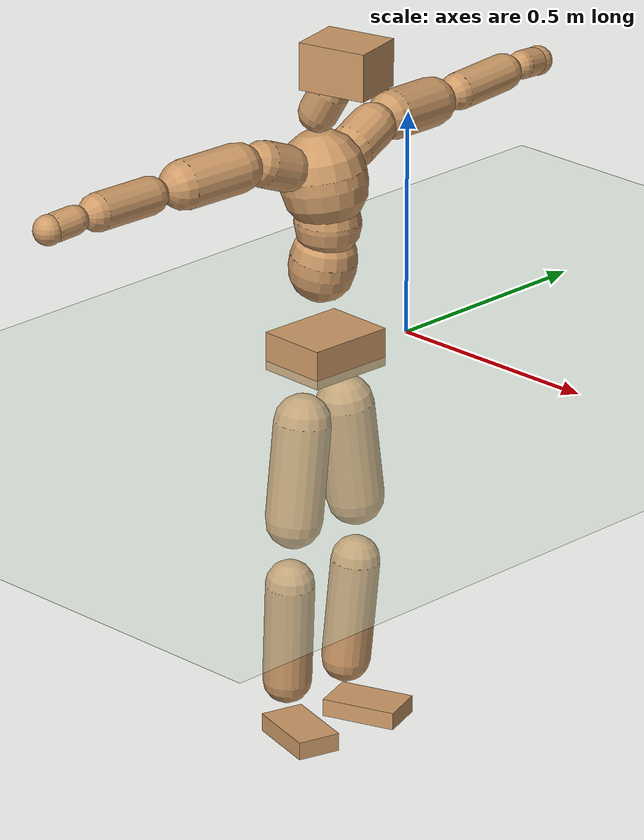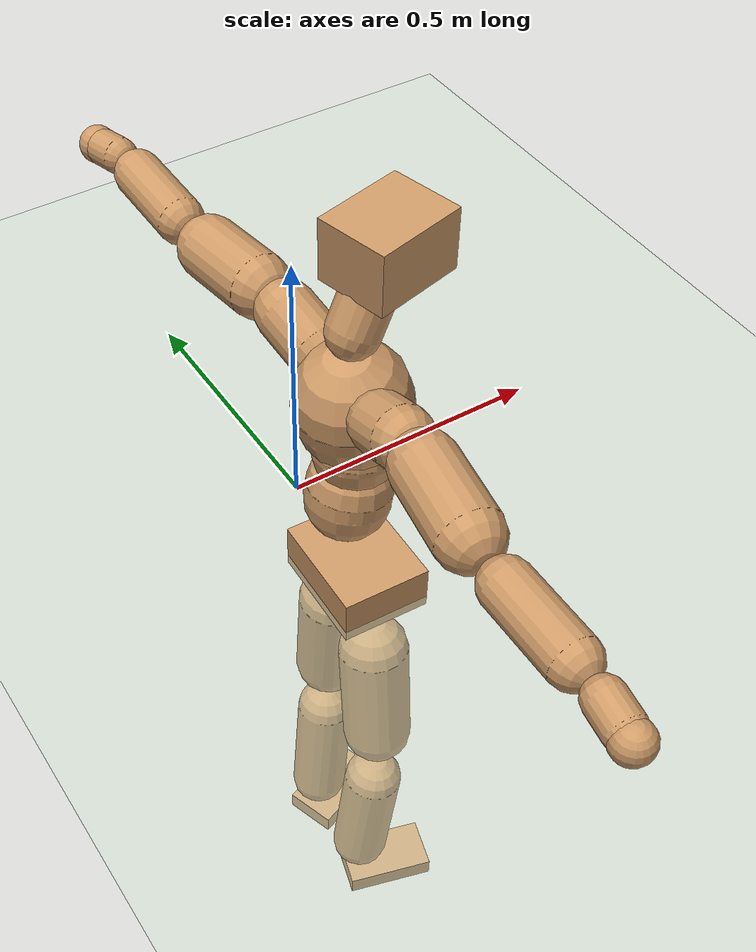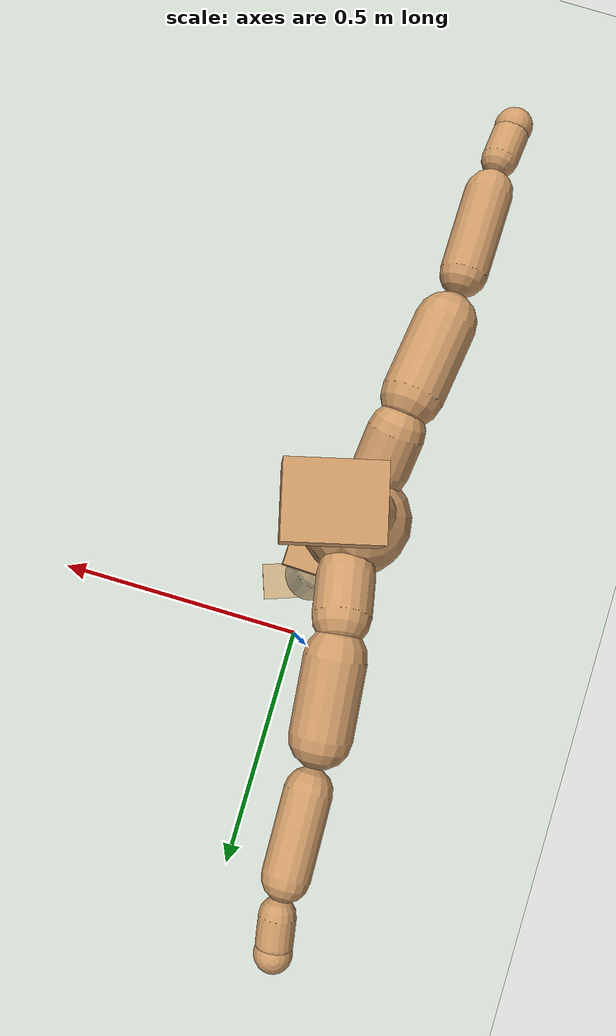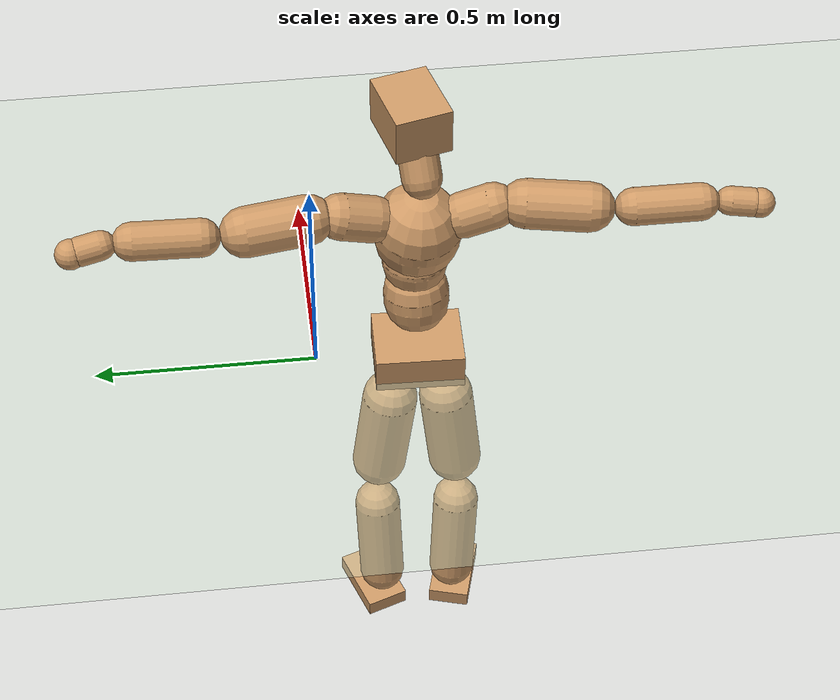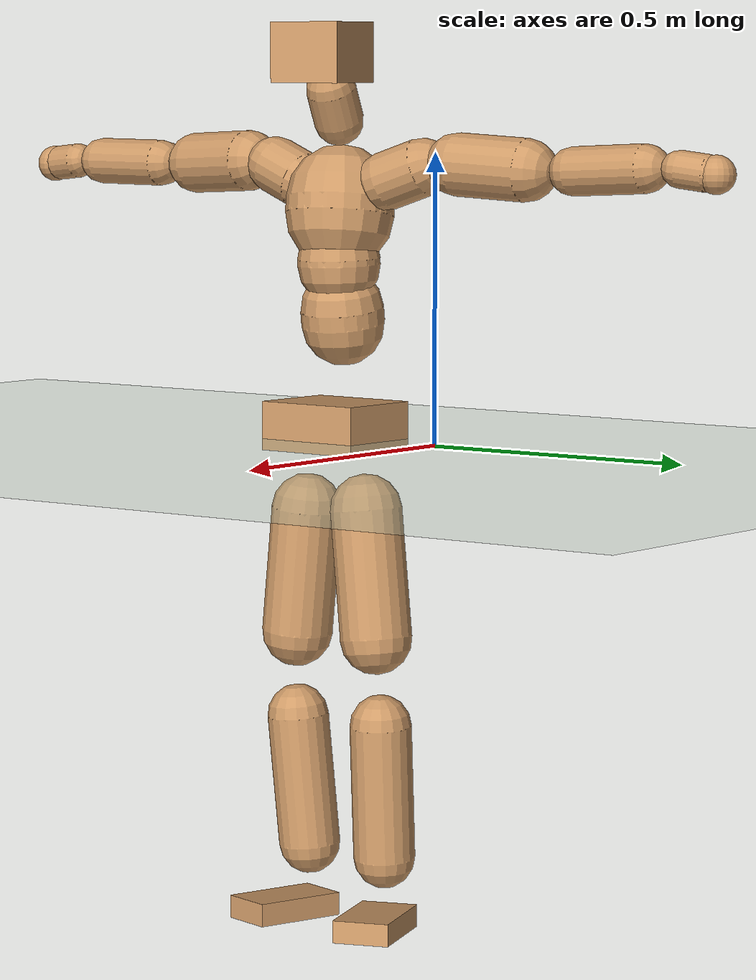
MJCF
<mujoco model="humanoid">
  <compiler coordinate="local" angle="radian"/>
  <default>
    <joint damping="0.0" armature="0.01" stiffness="0.0" limited="true"/>
    <geom conaffinity="1" condim="3" contype="7" margin="0.001" rgba="0.8 0.6 .4 1"/>
  </default>
  <asset>
    <texture type="skybox" builtin="gradient" rgb1=".4 .5 .6" rgb2="0 0 0" width="100" height="100"/>
    <texture builtin="flat" height="1278" mark="cross" markrgb="1 1 1" name="texgeom" random="0.01" rgb1="0.8 0.6 0.4" rgb2="0.8 0.6 0.4" type="cube" width="127"/>
    <texture builtin="checker" height="100" name="texplane" rgb1="0 0 0" rgb2="0.8 0.8 0.8" type="2d" width="100"/>
    <material name="MatPlane" reflectance="0.5" shininess="1" specular="1" texrepeat="60 60" texture="texplane"/>
    <material name="geom" texture="texgeom" texuniform="true"/>
  </asset>
  <worldbody>
    <light cutoff="100" diffuse="1 1 1" dir="-0 0 -1.3" directional="true" exponent="1" pos="0 0 1.3" specular=".1 .1 .1"/>
    <geom conaffinity="1" condim="3" name="floor" pos="0 0 0" rgba="0.8 0.9 0.8 1" size="100 100 .2" type="plane" material="MatPlane"/>
    <body name="Pelvis" pos="-0.0054 -0.2302 0.0285">
      <freejoint name="Pelvis"/>
      <geom type="box" contype="1" conaffinity="1" density="500" pos="-0.0123 0.0004 -0.0078" size="0.0795 0.1 0.0427" quat="0.9999 0.0000 0.0000 -0.0157" name="Pelvis"/>
      <body name="L_Hip" pos="-0.0198 0.0556 -0.0778">
        <joint name="L_Hip_x" type="hinge" pos="0 0 0" axis="1 0 0" stiffness="800" damping="80" armature="0.02" range="-180.0000 180.0000"/>
        <joint name="L_Hip_y" type="hinge" pos="0 0 0" axis="0 1 0" stiffness="800" damping="80" armature="0.02" range="-180.0000 180.0000"/>
        <joint name="L_Hip_z" type="hinge" pos="0 0 0" axis="0 0 1" stiffness="800" damping="80" armature="0.02" range="-180.0000 180.0000"/>
        <geom type="capsule" contype="1" conaffinity="1" density="500" fromto="0.0020 0.0088 -0.0744 0.0078 0.0351 -0.2977" size="0.0634" name="L_Hip"/>
        <body name="L_Knee" pos="0.0098 0.0438 -0.3721">
          <joint name="L_Knee_x" type="hinge" pos="0 0 0" axis="1 0 0" stiffness="800" damping="80" armature="0.02" range="-180.0000 180.0000"/>
          <joint name="L_Knee_y" type="hinge" pos="0 0 0" axis="0 1 0" stiffness="800" damping="80" armature="0.02" range="-180.0000 180.0000"/>
          <joint name="L_Knee_z" type="hinge" pos="0 0 0" axis="0 0 1" stiffness="800" damping="80" armature="0.02" range="-180.0000 180.0000"/>
          <geom type="capsule" contype="1" conaffinity="1" density="500" fromto="-0.0070 -0.0025 -0.0795 -0.0279 -0.0100 -0.3181" size="0.0541" name="L_Knee"/>
          <body name="L_Ankle" pos="-0.0349 -0.0125 -0.3976">
            <joint name="L_Ankle_x" type="hinge" pos="0 0 0" axis="1 0 0" stiffness="800" damping="80" armature="0.02" range="-180.0000 180.0000"/>
            <joint name="L_Ankle_y" type="hinge" pos="0 0 0" axis="0 1 0" stiffness="800" damping="80" armature="0.02" range="-180.0000 180.0000"/>
            <joint name="L_Ankle_z" type="hinge" pos="0 0 0" axis="0 0 1" stiffness="800" damping="80" armature="0.02" range="-180.0000 180.0000"/>
            <geom type="box" contype="1" conaffinity="1" density="500" pos="0.0568 0.0200 -0.0284" size="0.0844 0.0505 0.0197" quat="0.9857 0.0000 0.0000 0.1683" name="L_Ankle"/>
            <body name="L_Toe" pos="0.1135 0.0399 -0.0567">
              <joint name="L_Toe_x" type="hinge" pos="0 0 0" axis="1 0 0" stiffness="500" damping="50" armature="0.02" range="-180.0000 180.0000"/>
              <joint name="L_Toe_y" type="hinge" pos="0 0 0" axis="0 1 0" stiffness="500" damping="50" armature="0.02" range="-180.0000 180.0000"/>
              <joint name="L_Toe_z" type="hinge" pos="0 0 0" axis="0 0 1" stiffness="500" damping="50" armature="0.02" range="-180.0000 180.0000"/>
              <geom type="box" contype="1" conaffinity="1" density="500" pos="0.0000 0.0000 0.0276" size="0.001 0.0025 0.0009" quat="0.9849 0.0000 0.0000 0.1732" name="L_Toe"/>
            </body>
          </body>
        </body>
      </body>
      <body name="R_Hip" pos="-0.0156 -0.0574 -0.0849">
        <joint name="R_Hip_x" type="hinge" pos="0 0 0" axis="1 0 0" stiffness="800" damping="80" armature="0.02" range="-180.0000 180.0000"/>
        <joint name="R_Hip_y" type="hinge" pos="0 0 0" axis="0 1 0" stiffness="800" damping="80" armature="0.02" range="-180.0000 180.0000"/>
        <joint name="R_Hip_z" type="hinge" pos="0 0 0" axis="0 0 1" stiffness="800" damping="80" armature="0.02" range="-180.0000 180.0000"/>
        <geom type="capsule" contype="1" conaffinity="1" density="500" fromto="-0.0008 -0.0080 -0.0734 -0.0030 -0.0322 -0.2937" size="0.0624" name="R_Hip"/>
        <body name="R_Knee" pos="-0.0038 -0.0402 -0.3671">
          <joint name="R_Knee_x" type="hinge" pos="0 0 0" axis="1 0 0" stiffness="800" damping="80" armature="0.02" range="-180.0000 180.0000"/>
          <joint name="R_Knee_y" type="hinge" pos="0 0 0" axis="0 1 0" stiffness="800" damping="80" armature="0.02" range="-180.0000 180.0000"/>
          <joint name="R_Knee_z" type="hinge" pos="0 0 0" axis="0 0 1" stiffness="800" damping="80" armature="0.02" range="-180.0000 180.0000"/>
          <geom type="capsule" contype="1" conaffinity="1" density="500" fromto="-0.0066 0.0034 -0.0781 -0.0265 0.0134 -0.3122" size="0.0542" name="R_Knee"/>
          <body name="R_Ankle" pos="-0.0331 0.0168 -0.3903">
            <joint name="R_Ankle_x" type="hinge" pos="0 0 0" axis="1 0 0" stiffness="800" damping="80" armature="0.02" range="-180.0000 180.0000"/>
            <joint name="R_Ankle_y" type="hinge" pos="0 0 0" axis="0 1 0" stiffness="800" damping="80" armature="0.02" range="-180.0000 180.0000"/>
            <joint name="R_Ankle_z" type="hinge" pos="0 0 0" axis="0 0 1" stiffness="800" damping="80" armature="0.02" range="-180.0000 180.0000"/>
            <geom type="box" contype="1" conaffinity="1" density="500" pos="0.0604 -0.0171 -0.0284" size="0.0843 0.0488 0.0202" quat="0.9905 0.0000 0.0000 -0.1377" name="R_Ankle"/>
            <body name="R_Toe" pos="0.1208 -0.0343 -0.0567">
              <joint name="R_Toe_x" type="hinge" pos="0 0 0" axis="1 0 0" stiffness="500" damping="50" armature="0.02" range="-180.0000 180.0000"/>
              <joint name="R_Toe_y" type="hinge" pos="0 0 0" axis="0 1 0" stiffness="500" damping="50" armature="0.02" range="-180.0000 180.0000"/>
              <joint name="R_Toe_z" type="hinge" pos="0 0 0" axis="0 0 1" stiffness="500" damping="50" armature="0.02" range="-180.0000 180.0000"/>
              <geom type="box" contype="1" conaffinity="1" density="500" pos="0.0000 0.0000 0.0282" size="0.001 0.0024 0.001" quat="0.9918 0.0000 0.0000 -0.1281" name="R_Toe"/>
            </body>
          </body>
        </body>
      </body>
      <body name="Torso" pos="-0.0382 0.0041 0.1157">
        <joint name="Torso_x" type="hinge" pos="0 0 0" axis="1 0 0" stiffness="1000" damping="100" armature="0.02" range="-180.0000 180.0000"/>
        <joint name="Torso_y" type="hinge" pos="0 0 0" axis="0 1 0" stiffness="1000" damping="100" armature="0.02" range="-180.0000 180.0000"/>
        <joint name="Torso_z" type="hinge" pos="0 0 0" axis="0 0 1" stiffness="1000" damping="100" armature="0.02" range="-180.0000 180.0000"/>
        <geom type="capsule" contype="1" conaffinity="1" density="500" fromto="0.0141 0.0027 0.0812 0.0094 0.0018 0.0541" size="0.0727" name="Torso"/>
        <body name="Spine" pos="0.0234 0.0045 0.1353">
          <joint name="Spine_x" type="hinge" pos="0 0 0" axis="1 0 0" stiffness="1000" damping="100" armature="0.02" range="-180.0000 180.0000"/>
          <joint name="Spine_y" type="hinge" pos="0 0 0" axis="0 1 0" stiffness="1000" damping="100" armature="0.02" range="-180.0000 180.0000"/>
          <joint name="Spine_z" type="hinge" pos="0 0 0" axis="0 0 1" stiffness="1000" damping="100" armature="0.02" range="-180.0000 180.0000"/>
          <geom type="capsule" contype="1" conaffinity="1" density="500" fromto="0.0014 -0.0004 0.0329 0.0010 -0.0003 0.0220" size="0.0723" name="Spine"/>
          <body name="Chest" pos="0.0024 -0.0007 0.0549">
            <joint name="Chest_x" type="hinge" pos="0 0 0" axis="1 0 0" stiffness="1000" damping="100" armature="0.02" range="-180.0000 180.0000"/>
            <joint name="Chest_y" type="hinge" pos="0 0 0" axis="0 1 0" stiffness="1000" damping="100" armature="0.02" range="-180.0000 180.0000"/>
            <joint name="Chest_z" type="hinge" pos="0 0 0" axis="0 0 1" stiffness="1000" damping="100" armature="0.02" range="-180.0000 180.0000"/>
            <geom type="capsule" contype="1" conaffinity="1" density="500" fromto="-0.0125 -0.0049 0.0817 -0.0083 -0.0033 0.0545" size="0.0949" name="Chest"/>
            <body name="Neck" pos="-0.0268 -0.0139 0.1993">
              <joint name="Neck_x" type="hinge" pos="0 0 0" axis="1 0 0" stiffness="500" damping="50" armature="0.02" range="-180.0000 180.0000"/>
              <joint name="Neck_y" type="hinge" pos="0 0 0" axis="0 1 0" stiffness="500" damping="50" armature="0.02" range="-180.0000 180.0000"/>
              <joint name="Neck_z" type="hinge" pos="0 0 0" axis="0 0 1" stiffness="500" damping="50" armature="0.02" range="-180.0000 180.0000"/>
              <geom type="capsule" contype="1" conaffinity="1" density="500" fromto="0.0100 0.0022 0.0179 0.0401 0.0088 0.0718" size="0.0434" name="Neck"/>
              <body name="Head" pos="0.0501 0.011 0.0897">
                <joint name="Head_x" type="hinge" pos="0 0 0" axis="1 0 0" stiffness="500" damping="50" armature="0.02" range="-180.0000 180.0000"/>
                <joint name="Head_y" type="hinge" pos="0 0 0" axis="0 1 0" stiffness="500" damping="50" armature="0.02" range="-180.0000 180.0000"/>
                <joint name="Head_z" type="hinge" pos="0 0 0" axis="0 0 1" stiffness="500" damping="50" armature="0.02" range="-180.0000 180.0000"/>
                <geom type="box" contype="1" conaffinity="1" density="500" pos="0.0260 0.0065 0.0459" size="0.0778 0.0619 0.052" quat="0.9926 0.0000 0.0000 0.1218" name="Head"/>
              </body>
            </body>
            <body name="L_Thorax" pos="-0.0139 0.067 0.1057">
              <joint name="L_Thorax_x" type="hinge" pos="0 0 0" axis="1 0 0" stiffness="500" damping="50" armature="0.02" range="-180.0000 180.0000"/>
              <joint name="L_Thorax_y" type="hinge" pos="0 0 0" axis="0 1 0" stiffness="500" damping="50" armature="0.02" range="-180.0000 180.0000"/>
              <joint name="L_Thorax_z" type="hinge" pos="0 0 0" axis="0 0 1" stiffness="500" damping="50" armature="0.02" range="-180.0000 180.0000"/>
              <geom type="capsule" contype="1" conaffinity="1" density="500" fromto="-0.0037 0.0236 0.0083 -0.0146 0.0944 0.0333" size="0.0508" name="L_Thorax"/>
              <body name="L_Shoulder" pos="-0.0183 0.118 0.0417">
                <joint name="L_Shoulder_x" type="hinge" pos="0 0 0" axis="1 0 0" stiffness="500" damping="50" armature="0.02" range="-720.0000 720.0000"/>
                <joint name="L_Shoulder_y" type="hinge" pos="0 0 0" axis="0 1 0" stiffness="500" damping="50" armature="0.02" range="-720.0000 720.0000"/>
                <joint name="L_Shoulder_z" type="hinge" pos="0 0 0" axis="0 0 1" stiffness="500" damping="50" armature="0.02" range="-720.0000 720.0000"/>
                <geom type="capsule" contype="1" conaffinity="1" density="500" fromto="-0.0046 0.0444 -0.0026 -0.0184 0.1776 -0.0105" size="0.0544" name="L_Shoulder"/>
                <body name="L_Elbow" pos="-0.023 0.2219 -0.0132">
                  <joint name="L_Elbow_x" type="hinge" pos="0 0 0" axis="1 0 0" stiffness="500" damping="50" armature="0.02" range="-720.0000 720.0000"/>
                  <joint name="L_Elbow_y" type="hinge" pos="0 0 0" axis="0 1 0" stiffness="500" damping="50" armature="0.02" range="-720.0000 720.0000"/>
                  <joint name="L_Elbow_z" type="hinge" pos="0 0 0" axis="0 0 1" stiffness="500" damping="50" armature="0.02" range="-720.0000 720.0000"/>
                  <geom type="capsule" contype="1" conaffinity="1" density="500" fromto="-0.0011 0.0477 0.0024 -0.0045 0.1908 0.0095" size="0.0416" name="L_Elbow"/>
                  <body name="L_Wrist" pos="-0.0056 0.2386 0.0118">
                    <joint name="L_Wrist_x" type="hinge" pos="0 0 0" axis="1 0 0" stiffness="300" damping="30" armature="0.02" range="-180.0000 180.0000"/>
                    <joint name="L_Wrist_y" type="hinge" pos="0 0 0" axis="0 1 0" stiffness="300" damping="30" armature="0.02" range="-180.0000 180.0000"/>
                    <joint name="L_Wrist_z" type="hinge" pos="0 0 0" axis="0 0 1" stiffness="300" damping="30" armature="0.02" range="-180.0000 180.0000"/>
                    <geom type="capsule" contype="1" conaffinity="1" density="500" fromto="-0.0028 0.0159 -0.0021 -0.0112 0.0637 -0.0083" size="0.0317" name="L_Wrist"/>
                    <body name="L_Hand" pos="-0.014 0.0796 -0.0104">
                      <joint name="L_Hand_x" type="hinge" pos="0 0 0" axis="1 0 0" stiffness="300" damping="30" armature="0.02" range="-180.0000 180.0000"/>
                      <joint name="L_Hand_y" type="hinge" pos="0 0 0" axis="0 1 0" stiffness="300" damping="30" armature="0.02" range="-180.0000 180.0000"/>
                      <joint name="L_Hand_z" type="hinge" pos="0 0 0" axis="0 0 1" stiffness="300" damping="30" armature="0.02" range="-180.0000 180.0000"/>
                      <geom type="sphere" contype="1" conaffinity="1" density="500" size="0.0329" pos="0.0000 0.0000 0.0000" name="L_Hand"/>
                    </body>
                  </body>
                </body>
              </body>
            </body>
            <body name="R_Thorax" pos="-0.0219 -0.0775 0.1035">
              <joint name="R_Thorax_x" type="hinge" pos="0 0 0" axis="1 0 0" stiffness="500" damping="50" armature="0.02" range="-180.0000 180.0000"/>
              <joint name="R_Thorax_y" type="hinge" pos="0 0 0" axis="0 1 0" stiffness="500" damping="50" armature="0.02" range="-180.0000 180.0000"/>
              <joint name="R_Thorax_z" type="hinge" pos="0 0 0" axis="0 0 1" stiffness="500" damping="50" armature="0.02" range="-180.0000 180.0000"/>
              <geom type="capsule" contype="1" conaffinity="1" density="500" fromto="-0.0019 -0.0213 0.0085 -0.0075 -0.0852 0.0341" size="0.0502" name="R_Thorax"/>
              <body name="R_Shoulder" pos="-0.0093 -0.1065 0.0426">
                <joint name="R_Shoulder_x" type="hinge" pos="0 0 0" axis="1 0 0" stiffness="500" damping="50" armature="0.02" range="-720.0000 720.0000"/>
                <joint name="R_Shoulder_y" type="hinge" pos="0 0 0" axis="0 1 0" stiffness="500" damping="50" armature="0.02" range="-720.0000 720.0000"/>
                <joint name="R_Shoulder_z" type="hinge" pos="0 0 0" axis="0 0 1" stiffness="500" damping="50" armature="0.02" range="-720.0000 720.0000"/>
                <geom type="capsule" contype="1" conaffinity="1" density="500" fromto="-0.0065 -0.0449 -0.0023 -0.0259 -0.1798 -0.0090" size="0.0539" name="R_Shoulder"/>
                <body name="R_Elbow" pos="-0.0324 -0.2247 -0.0113">
                  <joint name="R_Elbow_x" type="hinge" pos="0 0 0" axis="1 0 0" stiffness="500" damping="50" armature="0.02" range="-720.0000 720.0000"/>
                  <joint name="R_Elbow_y" type="hinge" pos="0 0 0" axis="0 1 0" stiffness="500" damping="50" armature="0.02" range="-720.0000 720.0000"/>
                  <joint name="R_Elbow_z" type="hinge" pos="0 0 0" axis="0 0 1" stiffness="500" damping="50" armature="0.02" range="-720.0000 720.0000"/>
                  <geom type="capsule" contype="1" conaffinity="1" density="500" fromto="-0.0008 -0.0475 0.0005 -0.0031 -0.1899 0.0020" size="0.0412" name="R_Elbow"/>
                  <body name="R_Wrist" pos="-0.0039 -0.2374 0.0025">
                    <joint name="R_Wrist_x" type="hinge" pos="0 0 0" axis="1 0 0" stiffness="300" damping="30" armature="0.02" range="-180.0000 180.0000"/>
                    <joint name="R_Wrist_y" type="hinge" pos="0 0 0" axis="0 1 0" stiffness="300" damping="30" armature="0.02" range="-180.0000 180.0000"/>
                    <joint name="R_Wrist_z" type="hinge" pos="0 0 0" axis="0 0 1" stiffness="300" damping="30" armature="0.02" range="-180.0000 180.0000"/>
                    <geom type="capsule" contype="1" conaffinity="1" density="500" fromto="-0.0018 -0.0159 -0.0016 -0.0073 -0.0636 -0.0063" size="0.0314" name="R_Wrist"/>
                    <body name="R_Hand" pos="-0.0091 -0.0795 -0.0079">
                      <joint name="R_Hand_x" type="hinge" pos="0 0 0" axis="1 0 0" stiffness="300" damping="30" armature="0.02" range="-180.0000 180.0000"/>
                      <joint name="R_Hand_y" type="hinge" pos="0 0 0" axis="0 1 0" stiffness="300" damping="30" armature="0.02" range="-180.0000 180.0000"/>
                      <joint name="R_Hand_z" type="hinge" pos="0 0 0" axis="0 0 1" stiffness="300" damping="30" armature="0.02" range="-180.0000 180.0000"/>
                      <geom type="sphere" contype="1" conaffinity="1" density="500" size="0.0324" pos="0.0000 0.0000 0.0000" name="R_Hand"/>
                    </body>
                  </body>
                </body>
              </body>
            </body>
          </body>
        </body>
      </body>
    </body>
  </worldbody>
  <actuator>
    <motor name="L_Hip_x" joint="L_Hip_x" gear="500"/>
    <motor name="L_Hip_y" joint="L_Hip_y" gear="500"/>
    <motor name="L_Hip_z" joint="L_Hip_z" gear="500"/>
    <motor name="L_Knee_x" joint="L_Knee_x" gear="500"/>
    <motor name="L_Knee_y" joint="L_Knee_y" gear="500"/>
    <motor name="L_Knee_z" joint="L_Knee_z" gear="500"/>
    <motor name="L_Ankle_x" joint="L_Ankle_x" gear="500"/>
    <motor name="L_Ankle_y" joint="L_Ankle_y" gear="500"/>
    <motor name="L_Ankle_z" joint="L_Ankle_z" gear="500"/>
    <motor name="L_Toe_x" joint="L_Toe_x" gear="500"/>
    <motor name="L_Toe_y" joint="L_Toe_y" gear="500"/>
    <motor name="L_Toe_z" joint="L_Toe_z" gear="500"/>
    <motor name="R_Hip_x" joint="R_Hip_x" gear="500"/>
    <motor name="R_Hip_y" joint="R_Hip_y" gear="500"/>
    <motor name="R_Hip_z" joint="R_Hip_z" gear="500"/>
    <motor name="R_Knee_x" joint="R_Knee_x" gear="500"/>
    <motor name="R_Knee_y" joint="R_Knee_y" gear="500"/>
    <motor name="R_Knee_z" joint="R_Knee_z" gear="500"/>
    <motor name="R_Ankle_x" joint="R_Ankle_x" gear="500"/>
    <motor name="R_Ankle_y" joint="R_Ankle_y" gear="500"/>
    <motor name="R_Ankle_z" joint="R_Ankle_z" gear="500"/>
    <motor name="R_Toe_x" joint="R_Toe_x" gear="500"/>
    <motor name="R_Toe_y" joint="R_Toe_y" gear="500"/>
    <motor name="R_Toe_z" joint="R_Toe_z" gear="500"/>
    <motor name="Torso_x" joint="Torso_x" gear="500"/>
    <motor name="Torso_y" joint="Torso_y" gear="500"/>
    <motor name="Torso_z" joint="Torso_z" gear="500"/>
    <motor name="Spine_x" joint="Spine_x" gear="500"/>
    <motor name="Spine_y" joint="Spine_y" gear="500"/>
    <motor name="Spine_z" joint="Spine_z" gear="500"/>
    <motor name="Chest_x" joint="Chest_x" gear="500"/>
    <motor name="Chest_y" joint="Chest_y" gear="500"/>
    <motor name="Chest_z" joint="Chest_z" gear="500"/>
    <motor name="Neck_x" joint="Neck_x" gear="500"/>
    <motor name="Neck_y" joint="Neck_y" gear="500"/>
    <motor name="Neck_z" joint="Neck_z" gear="500"/>
    <motor name="Head_x" joint="Head_x" gear="500"/>
    <motor name="Head_y" joint="Head_y" gear="500"/>
    <motor name="Head_z" joint="Head_z" gear="500"/>
    <motor name="L_Thorax_x" joint="L_Thorax_x" gear="500"/>
    <motor name="L_Thorax_y" joint="L_Thorax_y" gear="500"/>
    <motor name="L_Thorax_z" joint="L_Thorax_z" gear="500"/>
    <motor name="L_Shoulder_x" joint="L_Shoulder_x" gear="500"/>
    <motor name="L_Shoulder_y" joint="L_Shoulder_y" gear="500"/>
    <motor name="L_Shoulder_z" joint="L_Shoulder_z" gear="500"/>
    <motor name="L_Elbow_x" joint="L_Elbow_x" gear="500"/>
    <motor name="L_Elbow_y" joint="L_Elbow_y" gear="500"/>
    <motor name="L_Elbow_z" joint="L_Elbow_z" gear="500"/>
    <motor name="L_Wrist_x" joint="L_Wrist_x" gear="500"/>
    <motor name="L_Wrist_y" joint="L_Wrist_y" gear="500"/>
    <motor name="L_Wrist_z" joint="L_Wrist_z" gear="500"/>
    <motor name="L_Hand_x" joint="L_Hand_x" gear="500"/>
    <motor name="L_Hand_y" joint="L_Hand_y" gear="500"/>
    <motor name="L_Hand_z" joint="L_Hand_z" gear="500"/>
    <motor name="R_Thorax_x" joint="R_Thorax_x" gear="500"/>
    <motor name="R_Thorax_y" joint="R_Thorax_y" gear="500"/>
    <motor name="R_Thorax_z" joint="R_Thorax_z" gear="500"/>
    <motor name="R_Shoulder_x" joint="R_Shoulder_x" gear="500"/>
    <motor name="R_Shoulder_y" joint="R_Shoulder_y" gear="500"/>
    <motor name="R_Shoulder_z" joint="R_Shoulder_z" gear="500"/>
    <motor name="R_Elbow_x" joint="R_Elbow_x" gear="500"/>
    <motor name="R_Elbow_y" joint="R_Elbow_y" gear="500"/>
    <motor name="R_Elbow_z" joint="R_Elbow_z" gear="500"/>
    <motor name="R_Wrist_x" joint="R_Wrist_x" gear="500"/>
    <motor name="R_Wrist_y" joint="R_Wrist_y" gear="500"/>
    <motor name="R_Wrist_z" joint="R_Wrist_z" gear="500"/>
    <motor name="R_Hand_x" joint="R_Hand_x" gear="500"/>
    <motor name="R_Hand_y" joint="R_Hand_y" gear="500"/>
    <motor name="R_Hand_z" joint="R_Hand_z" gear="500"/>
  </actuator>
  <contact>
    <exclude body1="Torso" body2="Chest"/>
    <exclude body1="Head" body2="Chest"/>
    <exclude body1="R_Knee" body2="R_Toe"/>
    <exclude body1="R_Knee" body2="L_Ankle"/>
    <exclude body1="R_Knee" body2="L_Toe"/>
    <exclude body1="L_Knee" body2="L_Toe"/>
    <exclude body1="L_Knee" body2="R_Ankle"/>
    <exclude body1="L_Knee" body2="R_Toe"/>
    <exclude body1="L_Shoulder" body2="Chest"/>
    <exclude body1="R_Shoulder" body2="Chest"/>
  </contact>
  <sensor/>
  <size njmax="700" nconmax="700"/>
</mujoco>
